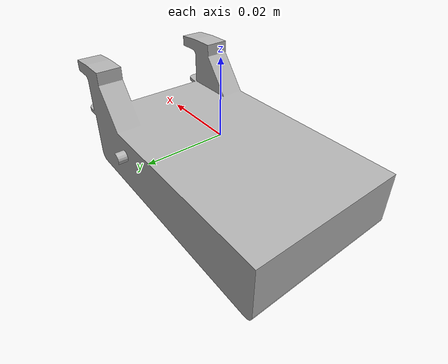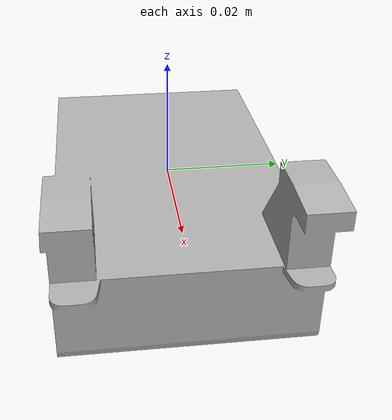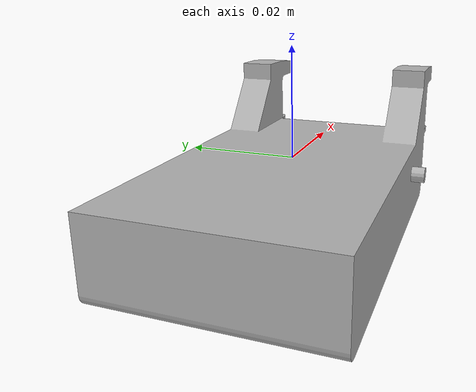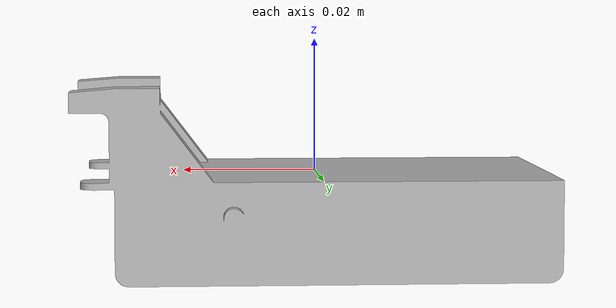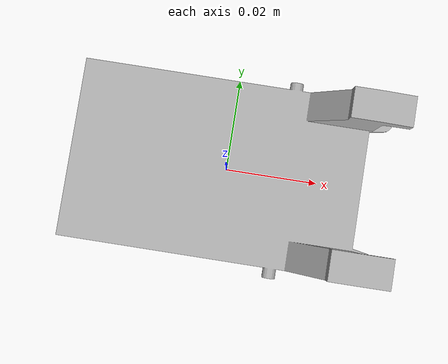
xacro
<?xml version="1.0" ?>
<robot name="RoverForURDF" xmlns:xacro="http://www.ros.org/wiki/xacro">

<xacro:include filename="$(find RoverForURDF_description)/urdf/materials.xacro" />
<xacro:include filename="$(find RoverForURDF_description)/urdf/RoverForURDF.trans" />
<xacro:include filename="$(find RoverForURDF_description)/urdf/RoverForURDF.gazebo" />
<link name="base_link">
  <inertial>
    <origin xyz="-0.0010247942474863401 2.3243483582924902e-05 -0.0068047469643921195" rpy="0 0 0"/>
    <mass value="0.32208220716218106"/>
    <inertia ixx="5.4e-05" iyy="0.000129" izz="0.000166" ixy="-0.0" iyz="-0.0" ixz="-6e-06"/>
  </inertial>
  <visual>
    <origin xyz="0 0 0" rpy="0 0 0"/>
    <geometry>
      <mesh filename="package://RoverForURDF_description/meshes/base_link.stl" scale="0.001 0.001 0.001"/>
    </geometry>
    <material name="silver"/>
  </visual>
  <collision>
    <origin xyz="0 0 0" rpy="0 0 0"/>
    <geometry>
      <mesh filename="package://RoverForURDF_description/meshes/base_link.stl" scale="0.001 0.001 0.001"/>
    </geometry>
  </collision>
</link>

</robot>

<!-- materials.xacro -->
<robot name="RoverForURDF" xmlns:xacro="http://www.ros.org/wiki/xacro" >

<material name="silver">
  <color rgba="0.700 0.700 0.700 1.000"/>
</material>

</robot>

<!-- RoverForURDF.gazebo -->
<robot name="RoverForURDF" xmlns:xacro="http://www.ros.org/wiki/xacro" >

<xacro:property name="body_color" value="Gazebo/Silver" />

<gazebo>
  <plugin name="control" filename="libgazebo_ros_control.so"/>
</gazebo>
<gazebo reference="base_link">
  <material>${body_color}</material>
  <mu1>0.2</mu1>
  <mu2>0.2</mu2>
  <selfCollide>true</selfCollide>
  <gravity>true</gravity>
</gazebo>

</robot>
